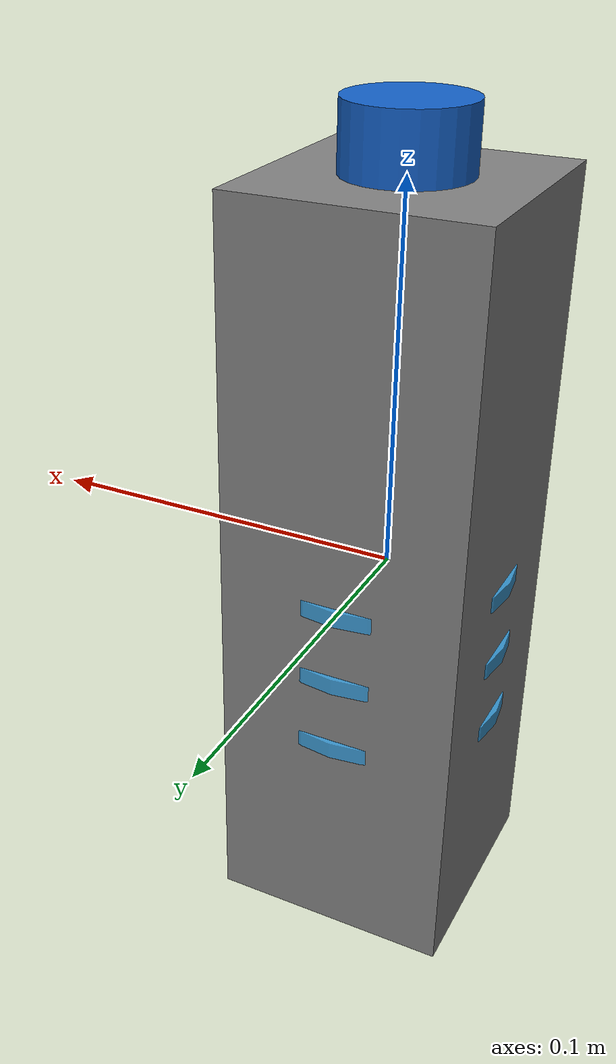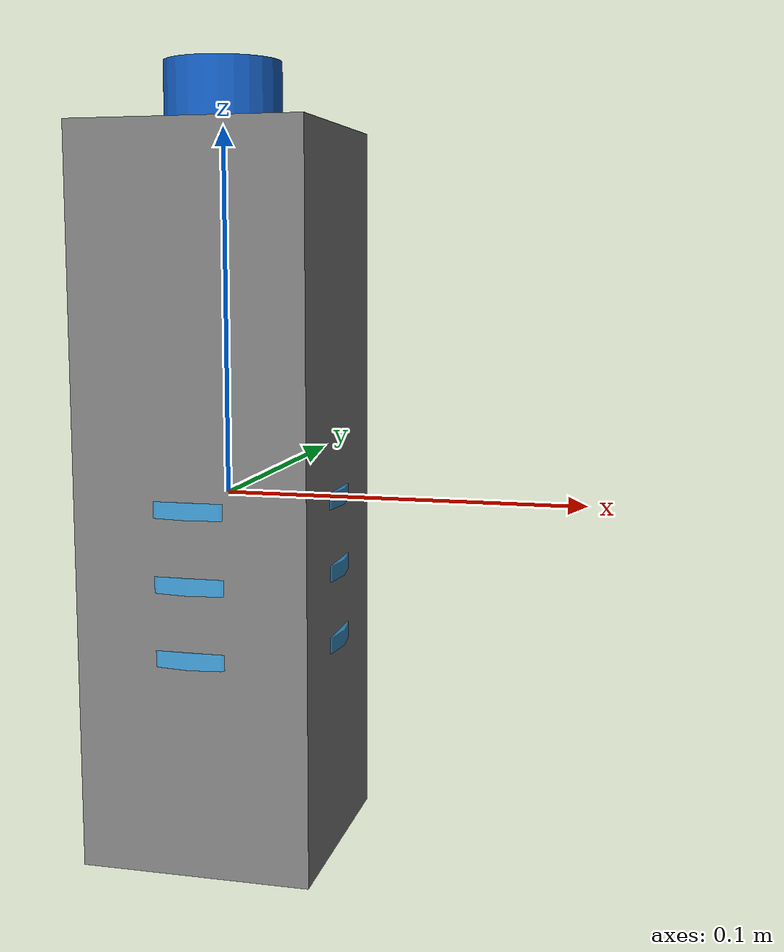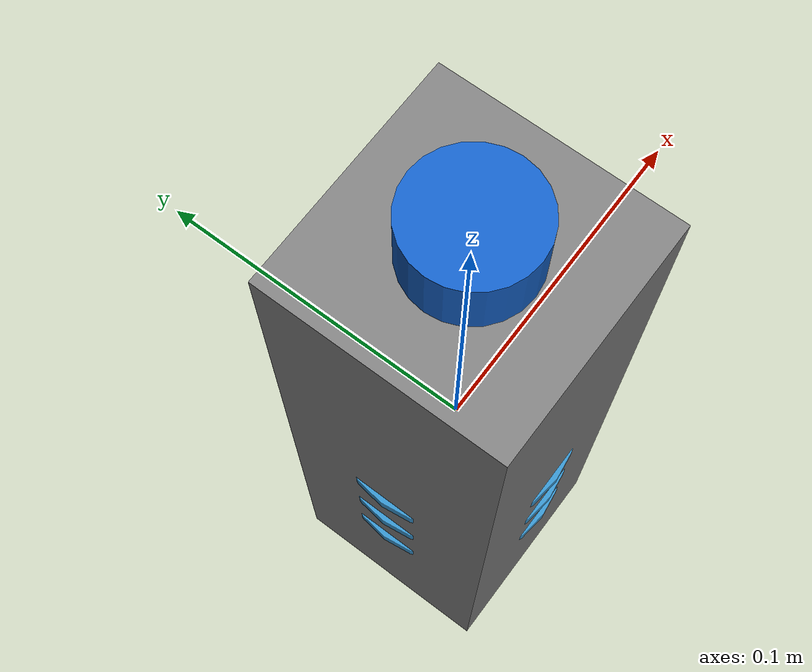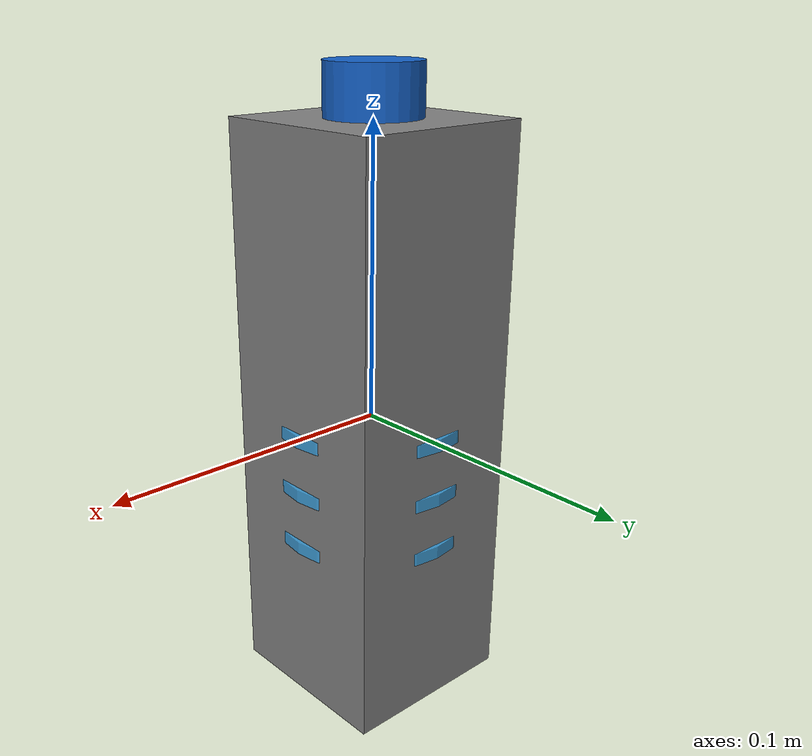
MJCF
<mujoco model="vla82_vla82_017">
  <compiler angle="radian"/>
  <asset>
    <texture name="source_texture" type="2d" file="source_texture.png"/>
    <material name="source_material" texture="source_texture" rgba="1 1 1 1"/>
  </asset>
  <default>
    <default class="visual"><geom contype="0" conaffinity="0" group="1" mass="0"/></default>
    <default class="collision"><geom contype="1" conaffinity="1" group="0" density="300" friction="0.55 0.005 0.0002" solref="0.02 1" solimp="0.9 0.95 0.001"/></default>
    <default class="region"><geom contype="0" conaffinity="0" group="1" rgba="0 1 0 0" mass="0"/></default>
  </default>
  <worldbody><body><body name="object">
    <geom name="bottle_body" class="visual" type="cylinder" pos="0 0 -0.012" size="0.031 0.082" rgba="0.22 0.66 0.94 0.62"/>
    <geom name="grip_ring_0" class="visual" type="cylinder" pos="0 0 -0.0400" size="0.0335 0.0022" rgba="0.25 0.66 0.91 0.88"/>
    <geom name="grip_ring_1" class="visual" type="cylinder" pos="0 0 -0.0200" size="0.0335 0.0022" rgba="0.25 0.66 0.91 0.88"/>
    <geom name="grip_ring_2" class="visual" type="cylinder" pos="0 0 0.0000" size="0.0335 0.0022" rgba="0.25 0.66 0.91 0.88"/>
    <geom name="bottle_shoulder" class="visual" type="ellipsoid" pos="0 0 0.070" size="0.031 0.031 0.018" rgba="0.27 0.71 0.96 0.68"/>
    <geom name="bottle_neck" class="visual" type="cylinder" pos="0 0 0.090" size="0.014 0.014" rgba="0.34 0.76 0.97 0.76"/>
    <geom name="bottle_cap" class="visual" type="cylinder" pos="0 0 0.107" size="0.016 0.010" rgba="0.08 0.38 0.78 1"/>
    <geom name="legacy_visual_mass_carrier" class="visual" type="box" size="0.032000 0.032000 0.100000" mass="0.819200000" rgba="0 0 0 0"/>
    <geom name="collision" class="collision" type="box" size="0.032000 0.032000 0.100000"/>
    <geom name="reg_bbox" class="region" type="box" pos="0 0 0" size="0.032000 0.032000 0.100000"/>
  </body></body></worldbody>
  <actuator/>
</mujoco>
